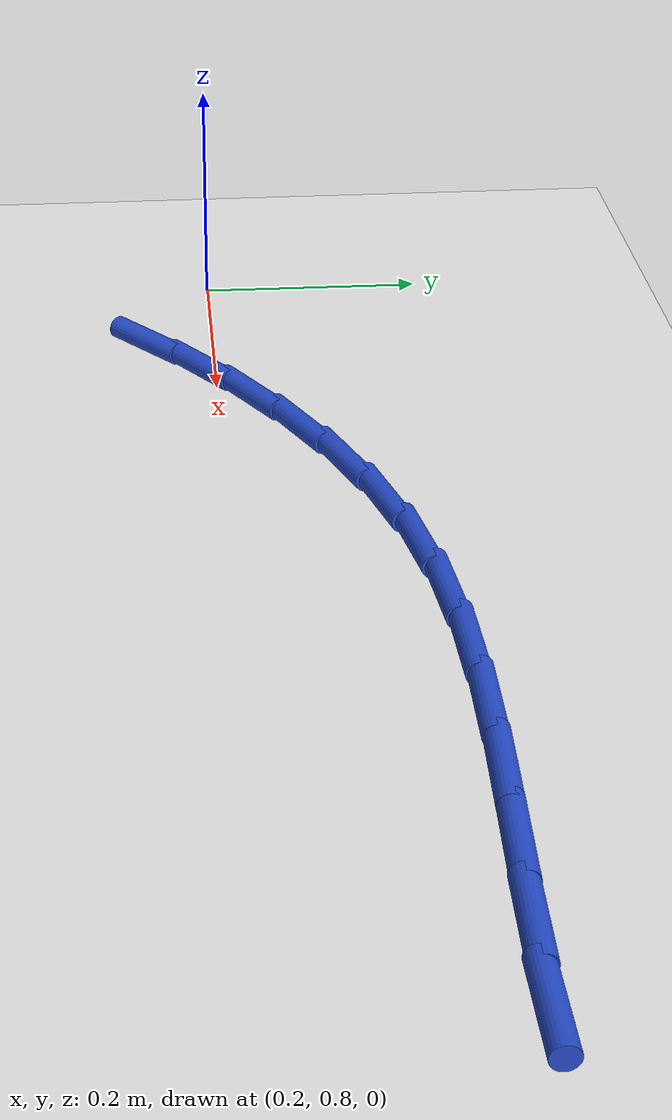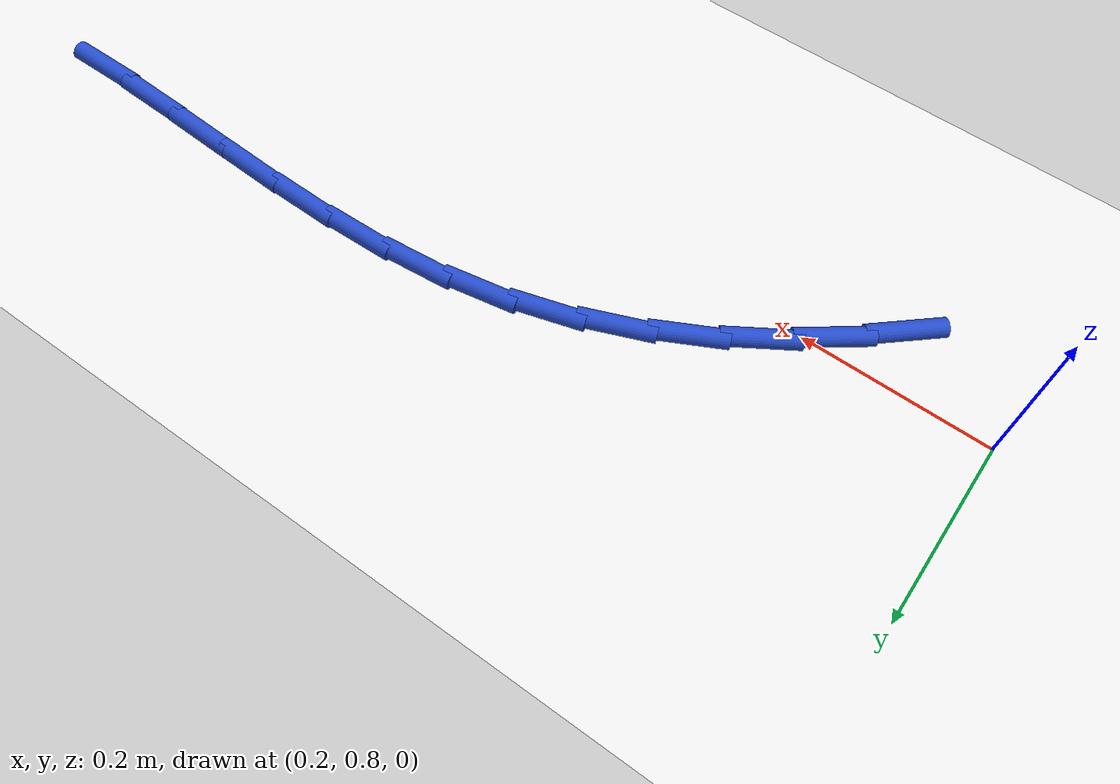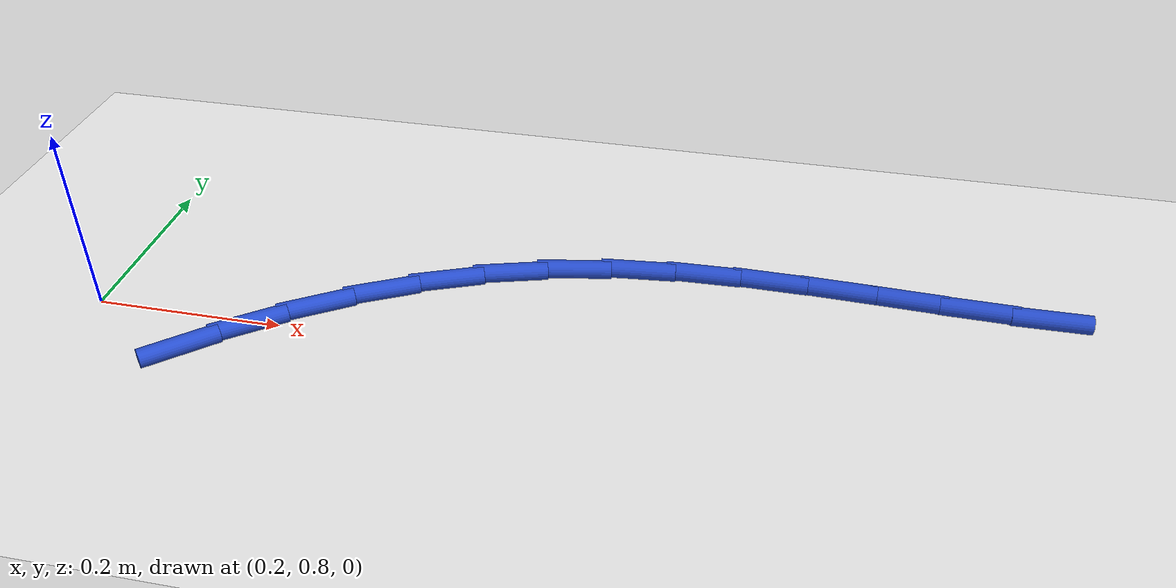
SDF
<sdf version="1.6">
 <world name="default">
  <model name="ground_plane">
   <static>1</static>
   <link name="link">
    <collision name="collision">
     <geometry><plane><normal>0 0 1</normal><size>100 100</size></plane></geometry>
     <surface><friction><ode><mu>100</mu><mu2>50</mu2></ode></friction></surface>
    </collision>
    <visual name="visual">
     <cast_shadows>0</cast_shadows>
     <geometry><plane><normal>0 0 1</normal><size>100 100</size></plane></geometry>
     <material>
      <script><uri>file://media/materials/scripts/gazebo.material</uri><name>Gazebo/WhiteGlow</name></script>
     </material>
    </visual>
   </link>
  </model>
  <model name="line">
   <link name="link_12">
    <pose>0.32151186076199145 0.7405245361922121 0.01 0 1.57 0.7240159164328578</pose>
    <collision name="collision">
     <geometry><cylinder><radius>0.01</radius><length>0.08</length></cylinder></geometry>
    </collision>
    <visual name="visual">
     <material>
      <script><name>Gazebo/Blue</name><uri>file://media/materials/scripts/gazebo.material</uri></script>
     </material>
     <geometry><cylinder><radius>0.01</radius><length>0.08</length></cylinder></geometry>
    </visual>
   </link>
   <link name="link_13">
    <pose>0.3739519606251389 0.7868919783777274 0.01 0 1.57 0.6471223684813167</pose>
    <collision name="collision">
     <geometry><cylinder><radius>0.01</radius><length>0.08</length></cylinder></geometry>
    </collision>
    <visual name="visual">
     <material>
      <script><name>Gazebo/Blue</name><uri>file://media/materials/scripts/gazebo.material</uri></script>
     </material>
     <geometry><cylinder><radius>0.01</radius><length>0.08</length></cylinder></geometry>
    </visual>
   </link>
   <link name="link_14">
    <pose>0.4295188219987446 0.8288823914637469 0.01 0 1.57 0.5650335166021357</pose>
    <collision name="collision">
     <geometry><cylinder><radius>0.01</radius><length>0.08</length></cylinder></geometry>
    </collision>
    <visual name="visual">
     <material>
      <script><name>Gazebo/Blue</name><uri>file://media/materials/scripts/gazebo.material</uri></script>
     </material>
     <geometry><cylinder><radius>0.01</radius><length>0.08</length></cylinder></geometry>
    </visual>
   </link>
   <link name="link_15">
    <pose>0.4879973044486974 0.8659568027098336 0.01 0 1.57 0.4770514875136016</pose>
    <collision name="collision">
     <geometry><cylinder><radius>0.01</radius><length>0.08</length></cylinder></geometry>
    </collision>
    <visual name="visual">
     <material>
      <script><name>Gazebo/Blue</name><uri>file://media/materials/scripts/gazebo.material</uri></script>
     </material>
     <geometry><cylinder><radius>0.01</radius><length>0.08</length></cylinder></geometry>
    </visual>
   </link>
   <link name="link_16">
    <pose>0.5491722675408862 0.89757623937555 0.01 0 1.57 0.38271143029135446</pose>
    <collision name="collision">
     <geometry><cylinder><radius>0.01</radius><length>0.08</length></cylinder></geometry>
    </collision>
    <visual name="visual">
     <material>
      <script><name>Gazebo/Blue</name><uri>file://media/materials/scripts/gazebo.material</uri></script>
     </material>
     <geometry><cylinder><radius>0.01</radius><length>0.08</length></cylinder></geometry>
    </visual>
   </link>
   <link name="link_17">
    <pose>0.6128285708411996 0.9232017287204587 0.01 0 1.57 0.28190817996463985</pose>
    <collision name="collision">
     <geometry><cylinder><radius>0.01</radius><length>0.08</length></cylinder></geometry>
    </collision>
    <visual name="visual">
     <material>
      <script><name>Gazebo/Blue</name><uri>file://media/materials/scripts/gazebo.material</uri></script>
     </material>
     <geometry><cylinder><radius>0.01</radius><length>0.08</length></cylinder></geometry>
    </visual>
   </link>
   <link name="link_18">
    <pose>0.6787510739155264 0.9422942980041222 0.01 0 1.57 0.1782617078955826</pose>
    <collision name="collision">
     <geometry><cylinder><radius>0.01</radius><length>0.08</length></cylinder></geometry>
    </collision>
    <visual name="visual">
     <material>
      <script><name>Gazebo/Blue</name><uri>file://media/materials/scripts/gazebo.material</uri></script>
     </material>
     <geometry><cylinder><radius>0.01</radius><length>0.08</length></cylinder></geometry>
    </visual>
   </link>
   <link name="link_19">
    <pose>0.7466977316301026 0.9545365356287773 0.01 0 1.57 0.09091769655312919</pose>
    <collision name="collision">
     <geometry><cylinder><radius>0.01</radius><length>0.08</length></cylinder></geometry>
    </collision>
    <visual name="visual">
     <material>
      <script><name>Gazebo/Blue</name><uri>file://media/materials/scripts/gazebo.material</uri></script>
     </material>
     <geometry><cylinder><radius>0.01</radius><length>0.08</length></cylinder></geometry>
    </visual>
   </link>
   <link name="link_20">
    <pose>0.8162724538397936 0.9608795960532523 0.01 0 1.57 0.026081626194197495</pose>
    <collision name="collision">
     <geometry><cylinder><radius>0.01</radius><length>0.08</length></cylinder></geometry>
    </collision>
    <visual name="visual">
     <material>
      <script><name>Gazebo/Blue</name><uri>file://media/materials/scripts/gazebo.material</uri></script>
     </material>
     <geometry><cylinder><radius>0.01</radius><length>0.08</length></cylinder></geometry>
    </visual>
   </link>
   <link name="link_21">
    <pose>0.887024419946824 0.9627253409281458 0.01 0 1.57 -0.01747442000785712</pose>
    <collision name="collision">
     <geometry><cylinder><radius>0.01</radius><length>0.08</length></cylinder></geometry>
    </collision>
    <visual name="visual">
     <material>
      <script><name>Gazebo/Blue</name><uri>file://media/materials/scripts/gazebo.material</uri></script>
     </material>
     <geometry><cylinder><radius>0.01</radius><length>0.08</length></cylinder></geometry>
    </visual>
   </link>
   <link name="link_22">
    <pose>0.9585027438258621 0.9614761715257821 0.01 0 1.57 -0.04097394393093971</pose>
    <collision name="collision">
     <geometry><cylinder><radius>0.01</radius><length>0.08</length></cylinder></geometry>
    </collision>
    <visual name="visual">
     <material>
      <script><name>Gazebo/Blue</name><uri>file://media/materials/scripts/gazebo.material</uri></script>
     </material>
     <geometry><cylinder><radius>0.01</radius><length>0.08</length></cylinder></geometry>
    </visual>
   </link>
   <link name="link_23">
    <pose>1.0302565393515755 0.9585344891184864 0.01 0 1.57 -0.045119779260174735</pose>
    <collision name="collision">
     <geometry><cylinder><radius>0.01</radius><length>0.08</length></cylinder></geometry>
    </collision>
    <visual name="visual">
     <material>
      <script><name>Gazebo/Blue</name><uri>file://media/materials/scripts/gazebo.material</uri></script>
     </material>
     <geometry><cylinder><radius>0.01</radius><length>0.08</length></cylinder></geometry>
    </visual>
   </link>
   <link name="link_24">
    <pose>1.1018349203986322 0.9553026949785821 0.01 0 1.57 -0.029863458167266536</pose>
    <collision name="collision">
     <geometry><cylinder><radius>0.01</radius><length>0.08</length></cylinder></geometry>
    </collision>
    <visual name="visual">
     <material>
      <script><name>Gazebo/Blue</name><uri>file://media/materials/scripts/gazebo.material</uri></script>
     </material>
     <geometry><cylinder><radius>0.01</radius><length>0.08</length></cylinder></geometry>
    </visual>
   </link>
   <link name="link_25">
    <pose>1.1727870008417 0.9531831903783946 0.01 0 1.57 0.005655564931017357</pose>
    <collision name="collision">
     <geometry><cylinder><radius>0.01</radius><length>0.08</length></cylinder></geometry>
    </collision>
    <visual name="visual">
     <material>
      <script><name>Gazebo/Blue</name><uri>file://media/materials/scripts/gazebo.material</uri></script>
     </material>
     <geometry><cylinder><radius>0.01</radius><length>0.08</length></cylinder></geometry>
    </visual>
   </link>
  </model>
 </world>
</sdf>
